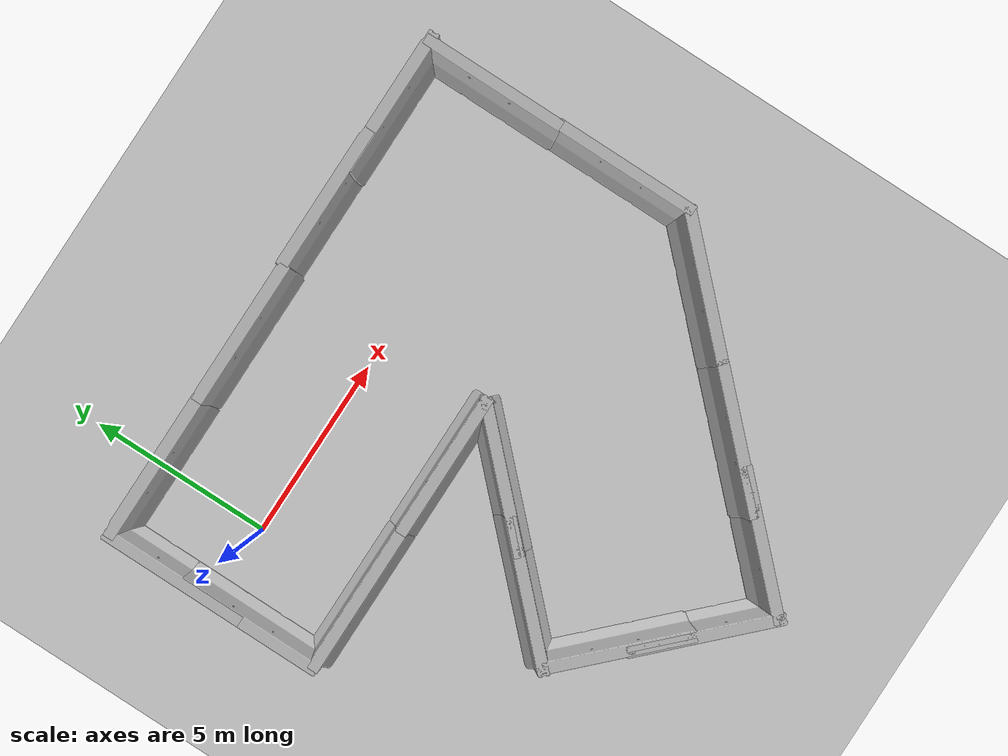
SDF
<sdf version="1.7">
 <world name="default">
  <light name="sun" type="directional">
   <pose>0 0 10 0 -0 0</pose>
   <diffuse>0.8 0.8 0.8 1</diffuse>
   <specular>0.2 0.2 0.2 1</specular>
   <attenuation>
    <range>1000</range>
    <constant>0.9</constant>
    <linear>0.01</linear>
    <quadratic>0.001</quadratic>
   </attenuation>
   <direction>-0.5 0.1 -0.9</direction>
   <spot><inner_angle>0</inner_angle><outer_angle>0</outer_angle><falloff>0</falloff></spot>
  </light>
  <model name="ground_plane">
   <pose>0 0 0 0 -0 0.785398</pose>
   <static>1</static>
   <link name="link">
    <collision name="collision">
     <geometry><plane><normal>0 0 1</normal><size>100 100</size></plane></geometry>
     <surface>
      <contact><collide_bitmask>65535</collide_bitmask></contact>
      <friction><ode><mu>100</mu><mu2>50</mu2></ode></friction>
     </surface>
    </collision>
    <visual name="visual">
     <cast_shadows>0</cast_shadows>
     <geometry><plane><normal>0 0 1</normal><size>100 100</size></plane></geometry>
     <material>
      <script><uri>file://media/materials/scripts/gazebo.material</uri><name>Gazebo/Grey</name></script>
     </material>
    </visual>
   </link>
  </model>
  <gravity>0 0 -9.8</gravity>
  <magnetic_field>6e-06 2.3e-05 -4.2e-05</magnetic_field>
  <atmosphere type="adiabatic"/>
  <physics type="ode">
   <max_step_size>0.001</max_step_size>
   <real_time_factor>1</real_time_factor>
   <real_time_update_rate>1000</real_time_update_rate>
  </physics>
  <scene><ambient>0.4 0.4 0.4 1</ambient><background>0.7 0.7 0.7 1</background><shadows>1</shadows></scene>
  <spherical_coordinates>
   <surface_model>EARTH_WGS84</surface_model>
   <latitude_deg>0</latitude_deg>
   <longitude_deg>0</longitude_deg>
   <elevation>0</elevation>
   <heading_deg>0</heading_deg>
  </spherical_coordinates>
  <model name="jersey_barrier">
   <static>1</static>
   <link name="link">
    <visual name="visual">
     <geometry><mesh><uri>model://jersey_barrier/meshes/jersey_barrier.dae</uri></mesh></geometry>
    </visual>
    <collision name="upright">
     <pose>0 0 0.5715 0 -0 0</pose>
     <geometry><box><size>4.06542 0.3063 1.143</size></box></geometry>
    </collision>
    <collision name="base">
     <pose>0 0 0.032258 0 -0 0</pose>
     <geometry><box><size>4.06542 0.8107 0.064516</size></box></geometry>
    </collision>
    <collision name="base2">
     <pose>0 0 0.1 0 -0 0</pose>
     <geometry><box><size>4.06542 0.65 0.1</size></box></geometry>
    </collision>
    <collision name="base3">
     <pose>0 0 0.2 0 -0 0</pose>
     <geometry><box><size>4.06542 0.5 0.1</size></box></geometry>
    </collision>
    <collision name="left-angle">
     <pose>0 -0.224 0.2401 0.9 -0 0</pose>
     <geometry><box><size>4.06542 0.5 0.064516</size></box></geometry>
    </collision>
    <collision name="right-angle">
     <pose>0 0.224 0.2401 -0.9 0 0</pose>
     <geometry><box><size>4.06542 0.5 0.064516</size></box></geometry>
    </collision>
   </link>
   <pose>0 3 0 0 -0 0</pose>
  </model>
  <model name="jersey_barrier_clone">
   <static>1</static>
   <link name="link">
    <visual name="visual">
     <geometry><mesh><uri>model://jersey_barrier/meshes/jersey_barrier.dae</uri></mesh></geometry>
    </visual>
    <collision name="upright">
     <pose>0 0 0.5715 0 -0 0</pose>
     <geometry><box><size>4.06542 0.3063 1.143</size></box></geometry>
    </collision>
    <collision name="base">
     <pose>0 0 0.032258 0 -0 0</pose>
     <geometry><box><size>4.06542 0.8107 0.064516</size></box></geometry>
    </collision>
    <collision name="base2">
     <pose>0 0 0.1 0 -0 0</pose>
     <geometry><box><size>4.06542 0.65 0.1</size></box></geometry>
    </collision>
    <collision name="base3">
     <pose>0 0 0.2 0 -0 0</pose>
     <geometry><box><size>4.06542 0.5 0.1</size></box></geometry>
    </collision>
    <collision name="left-angle">
     <pose>0 -0.224 0.2401 0.9 -0 0</pose>
     <geometry><box><size>4.06542 0.5 0.064516</size></box></geometry>
    </collision>
    <collision name="right-angle">
     <pose>0 0.224 0.2401 -0.9 0 0</pose>
     <geometry><box><size>4.06542 0.5 0.064516</size></box></geometry>
    </collision>
   </link>
   <pose>0 -3 0 0 -0 0</pose>
  </model>
  <model name="jersey_barrier_clone_0">
   <static>1</static>
   <link name="link">
    <visual name="visual">
     <geometry><mesh><uri>model://jersey_barrier/meshes/jersey_barrier.dae</uri></mesh></geometry>
    </visual>
    <collision name="upright">
     <pose>0 0 0.5715 0 -0 0</pose>
     <geometry><box><size>4.06542 0.3063 1.143</size></box></geometry>
    </collision>
    <collision name="base">
     <pose>0 0 0.032258 0 -0 0</pose>
     <geometry><box><size>4.06542 0.8107 0.064516</size></box></geometry>
    </collision>
    <collision name="base2">
     <pose>0 0 0.1 0 -0 0</pose>
     <geometry><box><size>4.06542 0.65 0.1</size></box></geometry>
    </collision>
    <collision name="base3">
     <pose>0 0 0.2 0 -0 0</pose>
     <geometry><box><size>4.06542 0.5 0.1</size></box></geometry>
    </collision>
    <collision name="left-angle">
     <pose>0 -0.224 0.2401 0.9 -0 0</pose>
     <geometry><box><size>4.06542 0.5 0.064516</size></box></geometry>
    </collision>
    <collision name="right-angle">
     <pose>0 0.224 0.2401 -0.9 0 0</pose>
     <geometry><box><size>4.06542 0.5 0.064516</size></box></geometry>
    </collision>
   </link>
   <pose>4 3 0 0 -0 0</pose>
  </model>
  <model name="jersey_barrier_clone_0_clone">
   <static>1</static>
   <link name="link">
    <visual name="visual">
     <geometry><mesh><uri>model://jersey_barrier/meshes/jersey_barrier.dae</uri></mesh></geometry>
    </visual>
    <collision name="upright">
     <pose>0 0 0.5715 0 -0 0</pose>
     <geometry><box><size>4.06542 0.3063 1.143</size></box></geometry>
    </collision>
    <collision name="base">
     <pose>0 0 0.032258 0 -0 0</pose>
     <geometry><box><size>4.06542 0.8107 0.064516</size></box></geometry>
    </collision>
    <collision name="base2">
     <pose>0 0 0.1 0 -0 0</pose>
     <geometry><box><size>4.06542 0.65 0.1</size></box></geometry>
    </collision>
    <collision name="base3">
     <pose>0 0 0.2 0 -0 0</pose>
     <geometry><box><size>4.06542 0.5 0.1</size></box></geometry>
    </collision>
    <collision name="left-angle">
     <pose>0 -0.224 0.2401 0.9 -0 0</pose>
     <geometry><box><size>4.06542 0.5 0.064516</size></box></geometry>
    </collision>
    <collision name="right-angle">
     <pose>0 0.224 0.2401 -0.9 0 0</pose>
     <geometry><box><size>4.06542 0.5 0.064516</size></box></geometry>
    </collision>
   </link>
   <pose>4 -3 0 0 -0 0</pose>
  </model>
  <model name="jersey_barrier_clone_1">
   <static>1</static>
   <link name="link">
    <visual name="visual">
     <geometry><mesh><uri>model://jersey_barrier/meshes/jersey_barrier.dae</uri></mesh></geometry>
    </visual>
    <collision name="upright">
     <pose>0 0 0.5715 0 -0 0</pose>
     <geometry><box><size>4.06542 0.3063 1.143</size></box></geometry>
    </collision>
    <collision name="base">
     <pose>0 0 0.032258 0 -0 0</pose>
     <geometry><box><size>4.06542 0.8107 0.064516</size></box></geometry>
    </collision>
    <collision name="base2">
     <pose>0 0 0.1 0 -0 0</pose>
     <geometry><box><size>4.06542 0.65 0.1</size></box></geometry>
    </collision>
    <collision name="base3">
     <pose>0 0 0.2 0 -0 0</pose>
     <geometry><box><size>4.06542 0.5 0.1</size></box></geometry>
    </collision>
    <collision name="left-angle">
     <pose>0 -0.224 0.2401 0.9 -0 0</pose>
     <geometry><box><size>4.06542 0.5 0.064516</size></box></geometry>
    </collision>
    <collision name="right-angle">
     <pose>0 0.224 0.2401 -0.9 0 0</pose>
     <geometry><box><size>4.06542 0.5 0.064516</size></box></geometry>
    </collision>
   </link>
   <pose>-1.9613 1.13578 0 0 -0 1.5708</pose>
  </model>
  <model name="jersey_barrier_clone_1_clone">
   <static>1</static>
   <link name="link">
    <visual name="visual">
     <geometry><mesh><uri>model://jersey_barrier/meshes/jersey_barrier.dae</uri></mesh></geometry>
    </visual>
    <collision name="upright">
     <pose>0 0 0.5715 0 -0 0</pose>
     <geometry><box><size>4.06542 0.3063 1.143</size></box></geometry>
    </collision>
    <collision name="base">
     <pose>0 0 0.032258 0 -0 0</pose>
     <geometry><box><size>4.06542 0.8107 0.064516</size></box></geometry>
    </collision>
    <collision name="base2">
     <pose>0 0 0.1 0 -0 0</pose>
     <geometry><box><size>4.06542 0.65 0.1</size></box></geometry>
    </collision>
    <collision name="base3">
     <pose>0 0 0.2 0 -0 0</pose>
     <geometry><box><size>4.06542 0.5 0.1</size></box></geometry>
    </collision>
    <collision name="left-angle">
     <pose>0 -0.224 0.2401 0.9 -0 0</pose>
     <geometry><box><size>4.06542 0.5 0.064516</size></box></geometry>
    </collision>
    <collision name="right-angle">
     <pose>0 0.224 0.2401 -0.9 0 0</pose>
     <geometry><box><size>4.06542 0.5 0.064516</size></box></geometry>
    </collision>
   </link>
   <pose>-1.96045 -1.08891 0 0 -0 1.5708</pose>
  </model>
  <model name="jersey_barrier_clone_0_clone_clone">
   <static>1</static>
   <link name="link">
    <visual name="visual">
     <geometry><mesh><uri>model://jersey_barrier/meshes/jersey_barrier.dae</uri></mesh></geometry>
    </visual>
    <collision name="upright">
     <pose>0 0 0.5715 0 -0 0</pose>
     <geometry><box><size>4.06542 0.3063 1.143</size></box></geometry>
    </collision>
    <collision name="base">
     <pose>0 0 0.032258 0 -0 0</pose>
     <geometry><box><size>4.06542 0.8107 0.064516</size></box></geometry>
    </collision>
    <collision name="base2">
     <pose>0 0 0.1 0 -0 0</pose>
     <geometry><box><size>4.06542 0.65 0.1</size></box></geometry>
    </collision>
    <collision name="base3">
     <pose>0 0 0.2 0 -0 0</pose>
     <geometry><box><size>4.06542 0.5 0.1</size></box></geometry>
    </collision>
    <collision name="left-angle">
     <pose>0 -0.224 0.2401 0.9 -0 0</pose>
     <geometry><box><size>4.06542 0.5 0.064516</size></box></geometry>
    </collision>
    <collision name="right-angle">
     <pose>0 0.224 0.2401 -0.9 0 0</pose>
     <geometry><box><size>4.06542 0.5 0.064516</size></box></geometry>
    </collision>
   </link>
   <pose>4.52933 -4.36504 0 0 -0 0.785398</pose>
  </model>
  <model name="jersey_barrier_clone_0_clone_clone_0">
   <static>1</static>
   <link name="link">
    <visual name="visual">
     <geometry><mesh><uri>model://jersey_barrier/meshes/jersey_barrier.dae</uri></mesh></geometry>
    </visual>
    <collision name="upright">
     <pose>0 0 0.5715 0 -0 0</pose>
     <geometry><box><size>4.06542 0.3063 1.143</size></box></geometry>
    </collision>
    <collision name="base">
     <pose>0 0 0.032258 0 -0 0</pose>
     <geometry><box><size>4.06542 0.8107 0.064516</size></box></geometry>
    </collision>
    <collision name="base2">
     <pose>0 0 0.1 0 -0 0</pose>
     <geometry><box><size>4.06542 0.65 0.1</size></box></geometry>
    </collision>
    <collision name="base3">
     <pose>0 0 0.2 0 -0 0</pose>
     <geometry><box><size>4.06542 0.5 0.1</size></box></geometry>
    </collision>
    <collision name="left-angle">
     <pose>0 -0.224 0.2401 0.9 -0 0</pose>
     <geometry><box><size>4.06542 0.5 0.064516</size></box></geometry>
    </collision>
    <collision name="right-angle">
     <pose>0 0.224 0.2401 -0.9 0 0</pose>
     <geometry><box><size>4.06542 0.5 0.064516</size></box></geometry>
    </collision>
   </link>
   <pose>7.95397 3.06381 0 0 -0 0</pose>
  </model>
  <model name="jersey_barrier_clone_1_clone_0">
   <static>1</static>
   <link name="link">
    <visual name="visual">
     <geometry><mesh><uri>model://jersey_barrier/meshes/jersey_barrier.dae</uri></mesh></geometry>
    </visual>
    <collision name="upright">
     <pose>0 0 0.5715 0 -0 0</pose>
     <geometry><box><size>4.06542 0.3063 1.143</size></box></geometry>
    </collision>
    <collision name="base">
     <pose>0 0 0.032258 0 -0 0</pose>
     <geometry><box><size>4.06542 0.8107 0.064516</size></box></geometry>
    </collision>
    <collision name="base2">
     <pose>0 0 0.1 0 -0 0</pose>
     <geometry><box><size>4.06542 0.65 0.1</size></box></geometry>
    </collision>
    <collision name="base3">
     <pose>0 0 0.2 0 -0 0</pose>
     <geometry><box><size>4.06542 0.5 0.1</size></box></geometry>
    </collision>
    <collision name="left-angle">
     <pose>0 -0.224 0.2401 0.9 -0 0</pose>
     <geometry><box><size>4.06542 0.5 0.064516</size></box></geometry>
    </collision>
    <collision name="right-angle">
     <pose>0 0.224 0.2401 -0.9 0 0</pose>
     <geometry><box><size>4.06542 0.5 0.064516</size></box></geometry>
    </collision>
   </link>
   <pose>12.5992 1.15257 0 0 -0 1.5708</pose>
  </model>
  <model name="jersey_barrier_clone_1_clone_1">
   <static>1</static>
   <link name="link">
    <visual name="visual">
     <geometry><mesh><uri>model://jersey_barrier/meshes/jersey_barrier.dae</uri></mesh></geometry>
    </visual>
    <collision name="upright">
     <pose>0 0 0.5715 0 -0 0</pose>
     <geometry><box><size>4.06542 0.3063 1.143</size></box></geometry>
    </collision>
    <collision name="base">
     <pose>0 0 0.032258 0 -0 0</pose>
     <geometry><box><size>4.06542 0.8107 0.064516</size></box></geometry>
    </collision>
    <collision name="base2">
     <pose>0 0 0.1 0 -0 0</pose>
     <geometry><box><size>4.06542 0.65 0.1</size></box></geometry>
    </collision>
    <collision name="base3">
     <pose>0 0 0.2 0 -0 0</pose>
     <geometry><box><size>4.06542 0.5 0.1</size></box></geometry>
    </collision>
    <collision name="left-angle">
     <pose>0 -0.224 0.2401 0.9 -0 0</pose>
     <geometry><box><size>4.06542 0.5 0.064516</size></box></geometry>
    </collision>
    <collision name="right-angle">
     <pose>0 0.224 0.2401 -0.9 0 0</pose>
     <geometry><box><size>4.06542 0.5 0.064516</size></box></geometry>
    </collision>
   </link>
   <pose>12.6224 -2.72566 0 0 -0 1.5708</pose>
  </model>
  <model name="jersey_barrier_clone_0_clone_clone_0_clone">
   <static>1</static>
   <link name="link">
    <visual name="visual">
     <geometry><mesh><uri>model://jersey_barrier/meshes/jersey_barrier.dae</uri></mesh></geometry>
    </visual>
    <collision name="upright">
     <pose>0 0 0.5715 0 -0 0</pose>
     <geometry><box><size>4.06542 0.3063 1.143</size></box></geometry>
    </collision>
    <collision name="base">
     <pose>0 0 0.032258 0 -0 0</pose>
     <geometry><box><size>4.06542 0.8107 0.064516</size></box></geometry>
    </collision>
    <collision name="base2">
     <pose>0 0 0.1 0 -0 0</pose>
     <geometry><box><size>4.06542 0.65 0.1</size></box></geometry>
    </collision>
    <collision name="base3">
     <pose>0 0 0.2 0 -0 0</pose>
     <geometry><box><size>4.06542 0.5 0.1</size></box></geometry>
    </collision>
    <collision name="left-angle">
     <pose>0 -0.224 0.2401 0.9 -0 0</pose>
     <geometry><box><size>4.06542 0.5 0.064516</size></box></geometry>
    </collision>
    <collision name="right-angle">
     <pose>0 0.224 0.2401 -0.9 0 0</pose>
     <geometry><box><size>4.06542 0.5 0.064516</size></box></geometry>
    </collision>
   </link>
   <pose>10.8229 3.03571 0 0 -0 0</pose>
  </model>
  <model name="jersey_barrier_clone_0_clone_clone_clone">
   <static>1</static>
   <link name="link">
    <visual name="visual">
     <geometry><mesh><uri>model://jersey_barrier/meshes/jersey_barrier.dae</uri></mesh></geometry>
    </visual>
    <collision name="upright">
     <pose>0 0 0.5715 0 -0 0</pose>
     <geometry><box><size>4.06542 0.3063 1.143</size></box></geometry>
    </collision>
    <collision name="base">
     <pose>0 0 0.032258 0 -0 0</pose>
     <geometry><box><size>4.06542 0.8107 0.064516</size></box></geometry>
    </collision>
    <collision name="base2">
     <pose>0 0 0.1 0 -0 0</pose>
     <geometry><box><size>4.06542 0.65 0.1</size></box></geometry>
    </collision>
    <collision name="base3">
     <pose>0 0 0.2 0 -0 0</pose>
     <geometry><box><size>4.06542 0.5 0.1</size></box></geometry>
    </collision>
    <collision name="left-angle">
     <pose>0 -0.224 0.2401 0.9 -0 0</pose>
     <geometry><box><size>4.06542 0.5 0.064516</size></box></geometry>
    </collision>
    <collision name="right-angle">
     <pose>0 0.224 0.2401 -0.9 0 0</pose>
     <geometry><box><size>4.06542 0.5 0.064516</size></box></geometry>
    </collision>
   </link>
   <pose>11.2634 -5.98026 0 0 -0 0.785398</pose>
  </model>
  <model name="jersey_barrier_clone_0_clone_clone_clone_0">
   <static>1</static>
   <link name="link">
    <visual name="visual">
     <geometry><mesh><uri>model://jersey_barrier/meshes/jersey_barrier.dae</uri></mesh></geometry>
    </visual>
    <collision name="upright">
     <pose>0 0 0.5715 0 -0 0</pose>
     <geometry><box><size>4.06542 0.3063 1.143</size></box></geometry>
    </collision>
    <collision name="base">
     <pose>0 0 0.032258 0 -0 0</pose>
     <geometry><box><size>4.06542 0.8107 0.064516</size></box></geometry>
    </collision>
    <collision name="base2">
     <pose>0 0 0.1 0 -0 0</pose>
     <geometry><box><size>4.06542 0.65 0.1</size></box></geometry>
    </collision>
    <collision name="base3">
     <pose>0 0 0.2 0 -0 0</pose>
     <geometry><box><size>4.06542 0.5 0.1</size></box></geometry>
    </collision>
    <collision name="left-angle">
     <pose>0 -0.224 0.2401 0.9 -0 0</pose>
     <geometry><box><size>4.06542 0.5 0.064516</size></box></geometry>
    </collision>
    <collision name="right-angle">
     <pose>0 0.224 0.2401 -0.9 0 0</pose>
     <geometry><box><size>4.06542 0.5 0.064516</size></box></geometry>
    </collision>
   </link>
   <pose>8.51906 -8.73279 0 0 -0 0.785398</pose>
  </model>
  <model name="jersey_barrier_clone_0_clone_clone_clone_1">
   <static>1</static>
   <link name="link">
    <visual name="visual">
     <geometry><mesh><uri>model://jersey_barrier/meshes/jersey_barrier.dae</uri></mesh></geometry>
    </visual>
    <collision name="upright">
     <pose>0 0 0.5715 0 -0 0</pose>
     <geometry><box><size>4.06542 0.3063 1.143</size></box></geometry>
    </collision>
    <collision name="base">
     <pose>0 0 0.032258 0 -0 0</pose>
     <geometry><box><size>4.06542 0.8107 0.064516</size></box></geometry>
    </collision>
    <collision name="base2">
     <pose>0 0 0.1 0 -0 0</pose>
     <geometry><box><size>4.06542 0.65 0.1</size></box></geometry>
    </collision>
    <collision name="base3">
     <pose>0 0 0.2 0 -0 0</pose>
     <geometry><box><size>4.06542 0.5 0.1</size></box></geometry>
    </collision>
    <collision name="left-angle">
     <pose>0 -0.224 0.2401 0.9 -0 0</pose>
     <geometry><box><size>4.06542 0.5 0.064516</size></box></geometry>
    </collision>
    <collision name="right-angle">
     <pose>0 0.224 0.2401 -0.9 0 0</pose>
     <geometry><box><size>4.06542 0.5 0.064516</size></box></geometry>
    </collision>
   </link>
   <pose>2.43135 -6.45705 0 0 -0 0.785398</pose>
  </model>
  <model name="jersey_barrier_clone_0_clone_clone_clone_2">
   <static>1</static>
   <link name="link">
    <visual name="visual">
     <geometry><mesh><uri>model://jersey_barrier/meshes/jersey_barrier.dae</uri></mesh></geometry>
    </visual>
    <collision name="upright">
     <pose>0 0 0.5715 0 -0 0</pose>
     <geometry><box><size>4.06542 0.3063 1.143</size></box></geometry>
    </collision>
    <collision name="base">
     <pose>0 0 0.032258 0 -0 0</pose>
     <geometry><box><size>4.06542 0.8107 0.064516</size></box></geometry>
    </collision>
    <collision name="base2">
     <pose>0 0 0.1 0 -0 0</pose>
     <geometry><box><size>4.06542 0.65 0.1</size></box></geometry>
    </collision>
    <collision name="base3">
     <pose>0 0 0.2 0 -0 0</pose>
     <geometry><box><size>4.06542 0.5 0.1</size></box></geometry>
    </collision>
    <collision name="left-angle">
     <pose>0 -0.224 0.2401 0.9 -0 0</pose>
     <geometry><box><size>4.06542 0.5 0.064516</size></box></geometry>
    </collision>
    <collision name="right-angle">
     <pose>0 0.224 0.2401 -0.9 0 0</pose>
     <geometry><box><size>4.06542 0.5 0.064516</size></box></geometry>
    </collision>
   </link>
   <pose>6.64531 -10.644 0 0 -0 0.785398</pose>
  </model>
  <model name="jersey_barrier_clone_0_clone_clone_clone_1_clone">
   <static>1</static>
   <link name="link">
    <visual name="visual">
     <geometry><mesh><uri>model://jersey_barrier/meshes/jersey_barrier.dae</uri></mesh></geometry>
    </visual>
    <collision name="upright">
     <pose>0 0 0.5715 0 -0 0</pose>
     <geometry><box><size>4.06542 0.3063 1.143</size></box></geometry>
    </collision>
    <collision name="base">
     <pose>0 0 0.032258 0 -0 0</pose>
     <geometry><box><size>4.06542 0.8107 0.064516</size></box></geometry>
    </collision>
    <collision name="base2">
     <pose>0 0 0.1 0 -0 0</pose>
     <geometry><box><size>4.06542 0.65 0.1</size></box></geometry>
    </collision>
    <collision name="base3">
     <pose>0 0 0.2 0 -0 0</pose>
     <geometry><box><size>4.06542 0.5 0.1</size></box></geometry>
    </collision>
    <collision name="left-angle">
     <pose>0 -0.224 0.2401 0.9 -0 0</pose>
     <geometry><box><size>4.06542 0.5 0.064516</size></box></geometry>
    </collision>
    <collision name="right-angle">
     <pose>0 0.224 0.2401 -0.9 0 0</pose>
     <geometry><box><size>4.06542 0.5 0.064516</size></box></geometry>
    </collision>
   </link>
   <pose>4.01583 -10.6875 0 0 0 -0.785397</pose>
  </model>
  <model name="jersey_barrier_clone_0_clone_clone_clone_1_clone_clone">
   <static>1</static>
   <link name="link">
    <visual name="visual">
     <geometry><mesh><uri>model://jersey_barrier/meshes/jersey_barrier.dae</uri></mesh></geometry>
    </visual>
    <collision name="upright">
     <pose>0 0 0.5715 0 -0 0</pose>
     <geometry><box><size>4.06542 0.3063 1.143</size></box></geometry>
    </collision>
    <collision name="base">
     <pose>0 0 0.032258 0 -0 0</pose>
     <geometry><box><size>4.06542 0.8107 0.064516</size></box></geometry>
    </collision>
    <collision name="base2">
     <pose>0 0 0.1 0 -0 0</pose>
     <geometry><box><size>4.06542 0.65 0.1</size></box></geometry>
    </collision>
    <collision name="base3">
     <pose>0 0 0.2 0 -0 0</pose>
     <geometry><box><size>4.06542 0.5 0.1</size></box></geometry>
    </collision>
    <collision name="left-angle">
     <pose>0 -0.224 0.2401 0.9 -0 0</pose>
     <geometry><box><size>4.06542 0.5 0.064516</size></box></geometry>
    </collision>
    <collision name="right-angle">
     <pose>0 0.224 0.2401 -0.9 0 0</pose>
     <geometry><box><size>4.06542 0.5 0.064516</size></box></geometry>
    </collision>
   </link>
   <pose>2.46451 -9.0867 0 0 0 -0.785397</pose>
  </model>
 </world>
</sdf>
